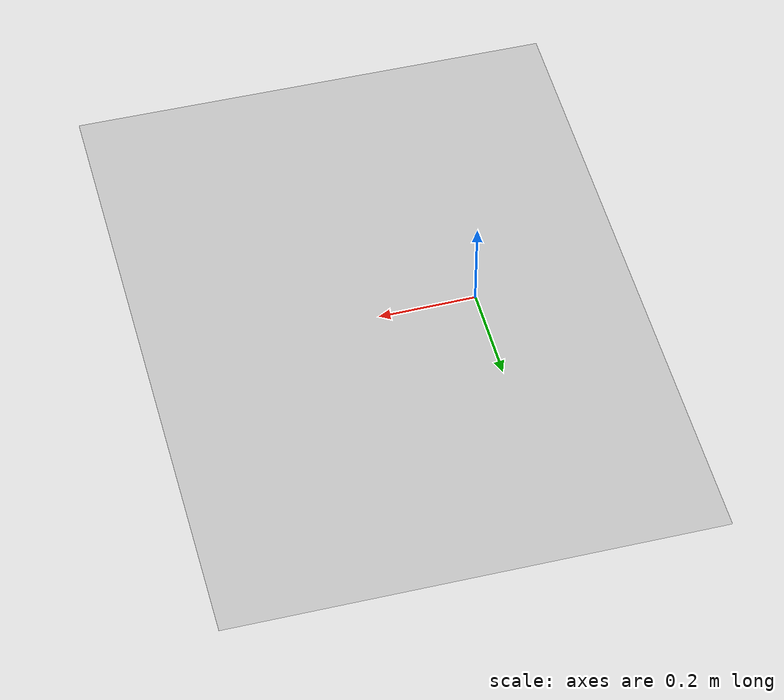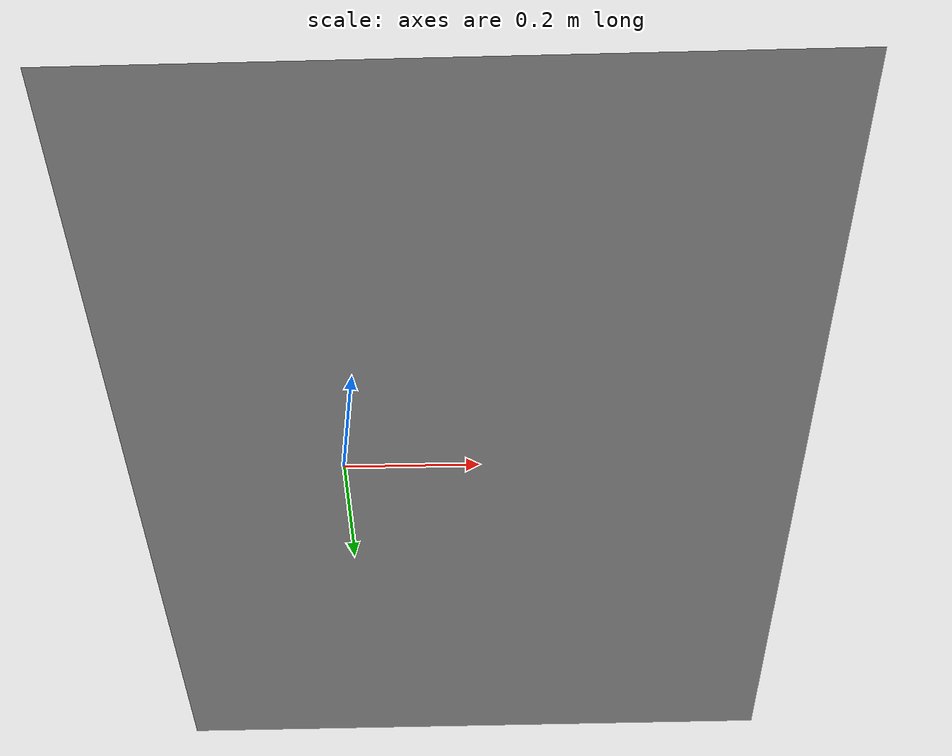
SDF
<?xml version="1.0" ?>
<sdf version="1.6">
  <model name="frame1">
    <static>true</static>
    <pose>1 0 0 1.57 0 0</pose>

    <link name="link_0">
      <visual name="visual">
        <geometry>
          <mesh>
            <uri>meshes/model.obj</uri>
          </mesh>
        </geometry>

      </visual>
      <collision name="collision_0">
        <pose>0 0 0 0 0 0</pose>

        <geometry>
          <mesh>
            <uri>meshes/model.obj</uri>
          </mesh>
        </geometry>
      </collision>
    </link>
  </model>
</sdf>
